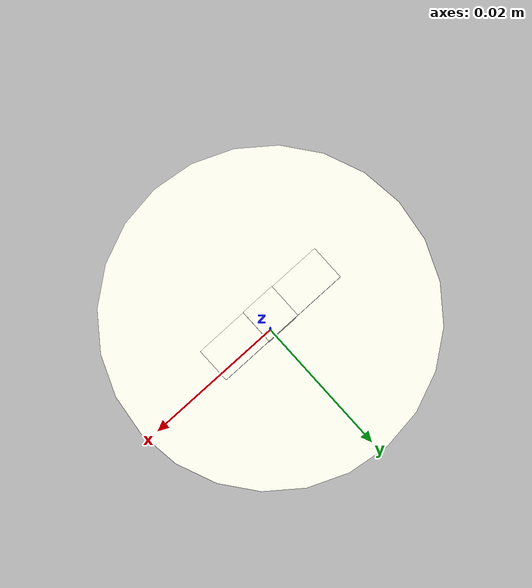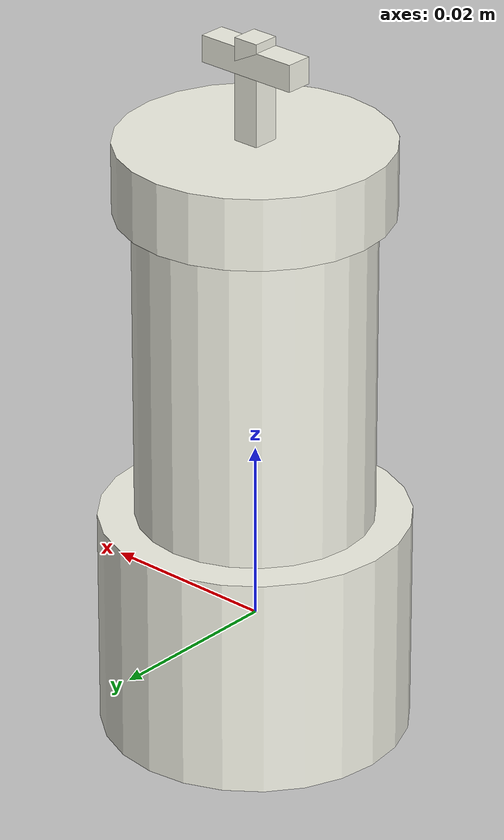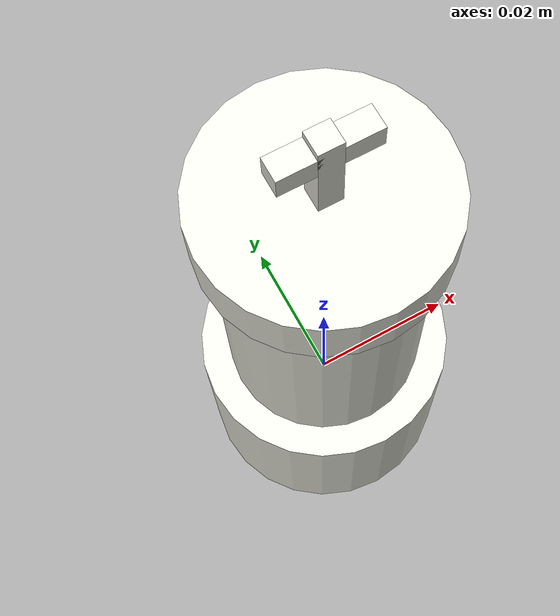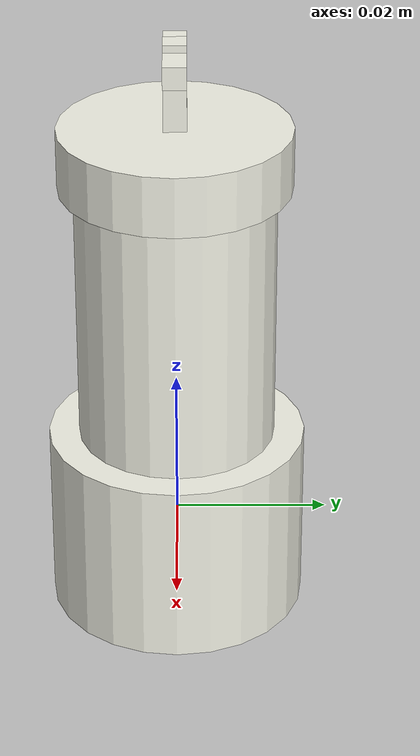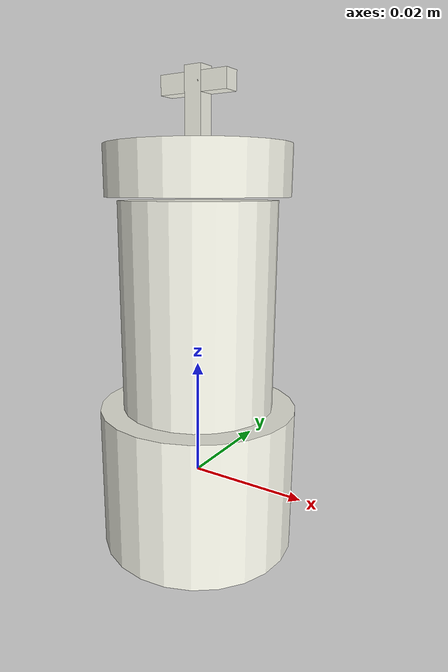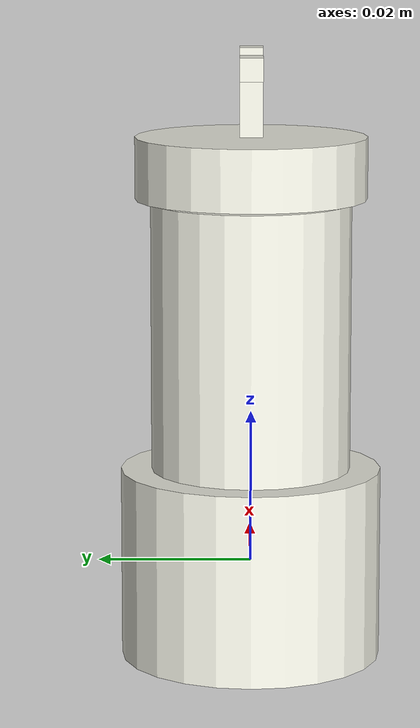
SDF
<?xml version="1.0" ?>
<sdf version="1.6">
  <model name="chess_king_white">
    <link name="link">
      <pose>0 0 0 0 0 0</pose>

      <inertial>
        <mass>0.12</mass>
        <inertia>
          <ixx>0.00004</ixx>
          <ixy>0</ixy>
          <ixz>0</ixz>
          <iyy>0.00004</iyy>
          <iyz>0</iyz>
          <izz>0.00001</izz>
        </inertia>
      </inertial>

      <!-- Base -->
      <collision name="base_collision">
        <geometry>
          <cylinder>
            <radius>0.017</radius>
            <length>0.025</length>
          </cylinder>
        </geometry>
        <surface>
          <friction>
            <ode>
              <mu>0.8</mu>
              <mu2>0.8</mu2>
            </ode>
          </friction>
          <bounce>
            <restitution_coefficient>0.1</restitution_coefficient>
          </bounce>
        </surface>
      </collision>

      <!-- Body -->
      <collision name="body_collision">
        <pose>0 0 0.030 0 0 0</pose>
        <geometry>
          <cylinder>
            <radius>0.013</radius>
            <length>0.035</length>
          </cylinder>
        </geometry>
      </collision>

      <!-- Crown base -->
      <collision name="crown_base_collision">
        <pose>0 0 0.052 0 0 0</pose>
        <geometry>
          <cylinder>
            <radius>0.015</radius>
            <length>0.008</length>
          </cylinder>
        </geometry>
      </collision>

      <!-- Cross vertical -->
      <collision name="cross_vertical_collision">
        <pose>0 0 0.060 0 0 0</pose>
        <geometry>
          <box>
            <size>0.003 0.003 0.015</size>
          </box>
        </geometry>
      </collision>

      <!-- Cross horizontal -->
      <collision name="cross_horizontal_collision">
        <pose>0 0 0.065 0 0 0</pose>
        <geometry>
          <box>
            <size>0.012 0.003 0.003</size>
          </box>
        </geometry>
      </collision>

      <visual name="base_visual">
        <geometry>
          <cylinder>
            <radius>0.017</radius>
            <length>0.025</length>
          </cylinder>
        </geometry>
        <material>
          <ambient>0.9 0.9 0.85 1</ambient>
          <diffuse>0.95 0.95 0.9 1</diffuse>
          <specular>0.3 0.3 0.3 1</specular>
        </material>
      </visual>

      <visual name="body_visual">
        <pose>0 0 0.030 0 0 0</pose>
        <geometry>
          <cylinder>
            <radius>0.013</radius>
            <length>0.035</length>
          </cylinder>
        </geometry>
        <material>
          <ambient>0.9 0.9 0.85 1</ambient>
          <diffuse>0.95 0.95 0.9 1</diffuse>
          <specular>0.3 0.3 0.3 1</specular>
        </material>
      </visual>

      <visual name="crown_base_visual">
        <pose>0 0 0.052 0 0 0</pose>
        <geometry>
          <cylinder>
            <radius>0.015</radius>
            <length>0.008</length>
          </cylinder>
        </geometry>
        <material>
          <ambient>0.9 0.9 0.85 1</ambient>
          <diffuse>0.95 0.95 0.9 1</diffuse>
          <specular>0.5 0.5 0.5 1</specular>
        </material>
      </visual>

      <visual name="cross_vertical_visual">
        <pose>0 0 0.060 0 0 0</pose>
        <geometry>
          <box>
            <size>0.003 0.003 0.015</size>
          </box>
        </geometry>
        <material>
          <ambient>0.9 0.9 0.85 1</ambient>
          <diffuse>0.95 0.95 0.9 1</diffuse>
          <specular>0.5 0.5 0.5 1</specular>
        </material>
      </visual>

      <visual name="cross_horizontal_visual">
        <pose>0 0 0.065 0 0 0</pose>
        <geometry>
          <box>
            <size>0.012 0.003 0.003</size>
          </box>
        </geometry>
        <material>
          <ambient>0.9 0.9 0.85 1</ambient>
          <diffuse>0.95 0.95 0.9 1</diffuse>
          <specular>0.5 0.5 0.5 1</specular>
        </material>
      </visual>
    </link>
  </model>
</sdf>
